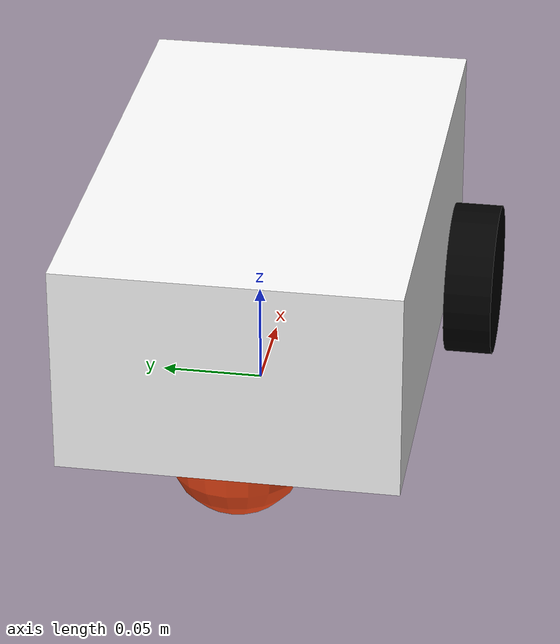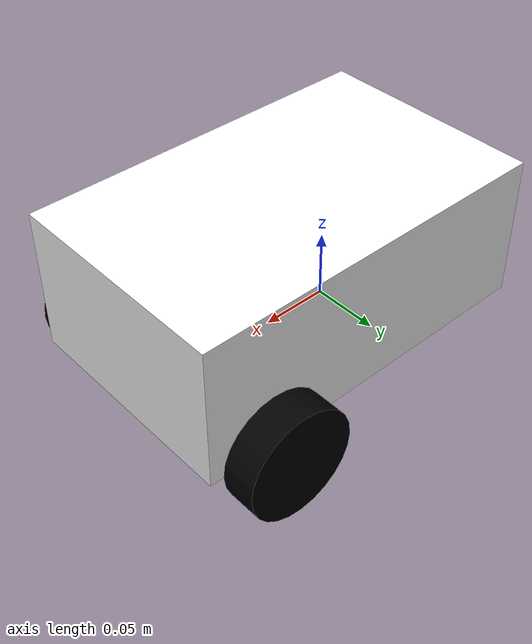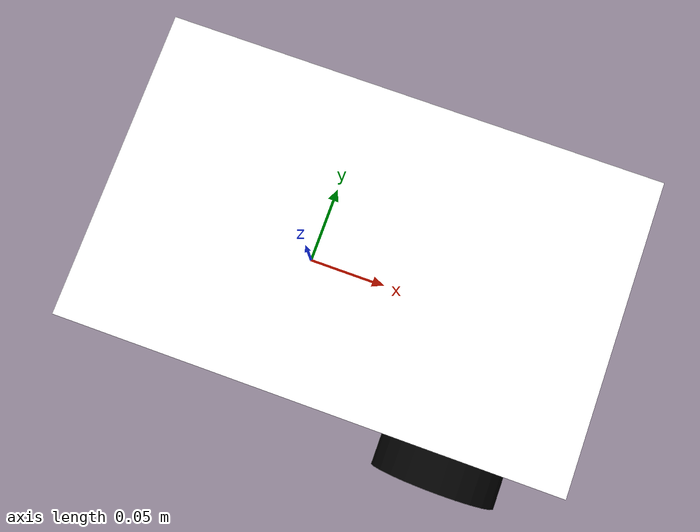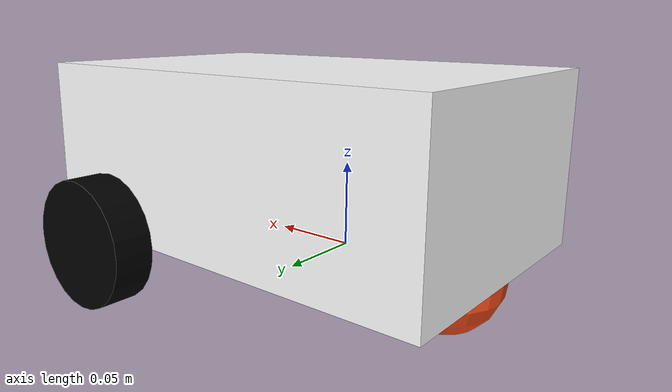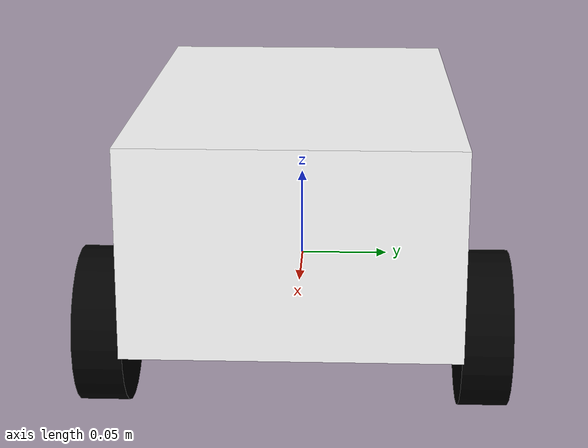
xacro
<?xml version="1.0"?>
<robot xmlns:xacro="http://www.ros.org/wiki/xacro" >

    <xacro:include filename="inertial_macros.xacro"/>

    <material name="white">
        <color rgba="1 1 1 1" />
    </material>

    <material name="orange">
        <color rgba="1 0.3 0.1 1" />
    </material>

    <material name="blue">
        <color rgba="0.2 0.2 1 1" />
    </material>

    <material name="black">
        <color rgba="0 0 0 1" />
    </material>

<!--base link-->
    <link name="base_link">

    </link>

<!--chassis link-->

    <joint name="chassis_joint" type="fixed">
        <parent link="base_link"/>
        <child link="chassis"/>
        <origin xyz="-0.1 0 0"/>

    </joint>

    <link name="chassis">
        <visual>
            <origin xyz="0.135 0 0.052885"/>
            <geometry>
                <box size="0.27 0.168 0.10577"/>
            </geometry>
            <material name="white"/>
        </visual>
        <collision>
            <origin xyz="0.135 0 0.052885"/>
            <geometry>
                <box size="0.27 0.168 0.10577"/>
            </geometry>
        </collision>

        <xacro:inertial_box mass="0.750" x="0.27" y="0.168" z="0.10577">
            <origin xyz="0.135 0 0.052885" rpy="0 0 0"/>

        </xacro:inertial_box>

    </link>
    <gazebo reference="chassis">
        <material>Gazebo/white</material>
    </gazebo>

<!--Left wheel link-->

    <joint name="left_wheel_joint" type="continuous">
        <parent link="base_link"/>
        <child link="left_wheel"/>
        <origin xyz="0.12 0.0965 0" rpy="-${pi/2} 0 0"/>  <!-- we are rotating the whole bot 90 degrees wrt x axis..-->
        <axis xyz="0 0 1"/>
    </joint>

    <link name="left_wheel">
        <visual>
            <geometry>
                <cylinder radius="0.04" length="0.025"/>
            </geometry>
            <material name="black"/>
        </visual>
        <collision>
            <geometry>
                <cylinder radius="0.04" length="0.025"/>
            </geometry>
        </collision>
        <xacro:inertial_cylinder mass="0.1" length="0.025" radius="0.04">
            <origin xyz = "0 0 0" rpy = "0 0 0 "/>
        </xacro:inertial_cylinder>
        </link>

        <gazebo reference="left_wheel">
            <material>Gazebo/Black</material>
        </gazebo>

<!--Right wheel link-->

    <joint name="right_wheel_joint" type="continuous">
        <parent link="base_link"/>
        <child link="right_wheel"/>
        <origin xyz="0.12 -0.0965 0" rpy="${pi/2} 0 0"/>  <!-- we are rotating the whole bot 90 degrees wrt x axis..-->
        <axis xyz="0 0 -1"/>
    </joint>

    <link name="right_wheel">
        <visual>
            <geometry>
                <cylinder radius="0.04" length="0.025"/>
            </geometry>
            <material name="black"/>
        </visual>
        <collision>
            <geometry>
                <cylinder radius="0.04" length="0.025"/>
            </geometry>
            <material name="black"/>
        </collision>
        <xacro:inertial_cylinder mass="0.1" length="0.025" radius="0.04">
            <origin xyz = "0 0 0" rpy = "0 0 0 "/>
        </xacro:inertial_cylinder>
    </link>

    <gazebo reference="right_wheel">
        <material>Gazebo/Black</material>
    </gazebo>

    <!--Caster wheel -->
    <joint name="caster_wheel_left_joint" type="fixed">
        <parent link="chassis"/>
        <child link="caster_wheel_left"/>
        <origin xyz="0.035 0 0"/>
    </joint>

    <link name="caster_wheel_left">
        <visual>
            <geometry>
                <sphere radius="0.035"/>
            </geometry>
            <material name="orange"/>
        </visual>
        <collision>
            <geometry>
                <sphere radius="0.035"/>
            </geometry>
            <material name="orange"/>
        </collision>
        <xacro:inertial_sphere mass="0.05" radius="0.035">
            <origin xyz="0 0 0" rpy="0 0 0"/>
        </xacro:inertial_sphere>
    </link>
    <gazebo reference="caster_wheel_left">
        <material>Gazebo/Black</material>
        <mu1 value="0.001"/>
        <mu2 value="0.001"/>

    </gazebo>

</robot>
